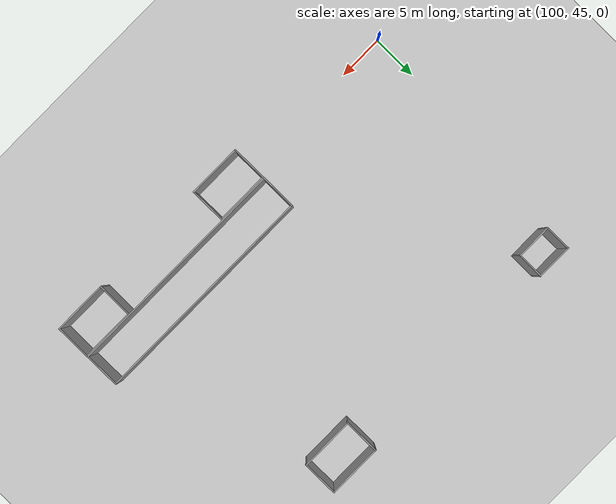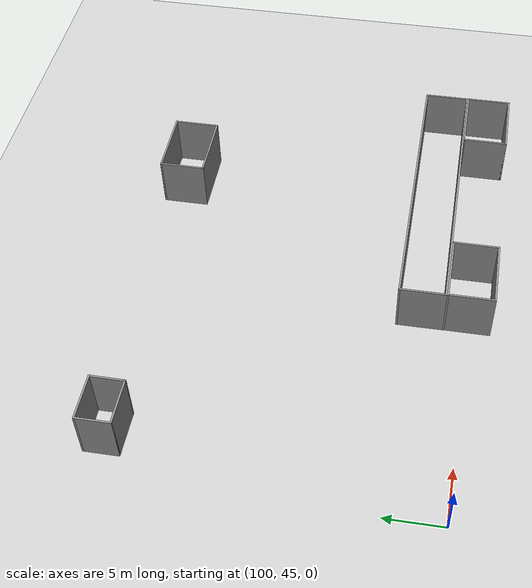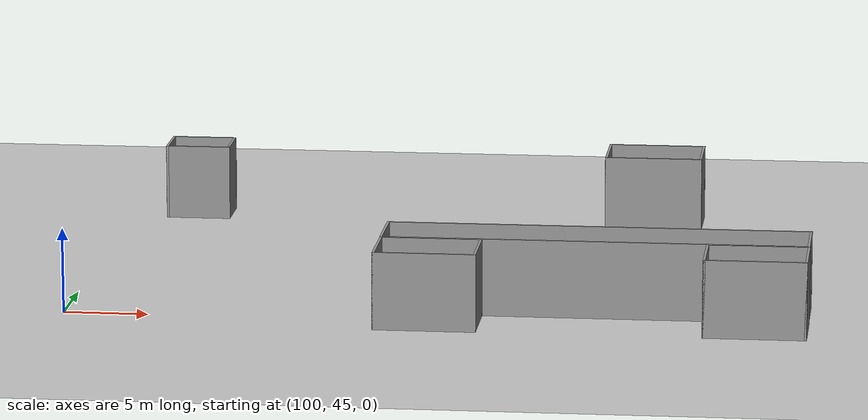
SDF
<sdf version="1.6">
 <world name="default">
  <model name="ground_plane">
   <static>1</static>
   <link name="link">
    <collision name="collision">
     <geometry><plane><normal>0 0 1</normal><size>320 320</size></plane></geometry>
     <surface>
      <contact><collide_bitmask>65535</collide_bitmask></contact>
      <friction><ode><mu>100</mu><mu2>50</mu2></ode></friction>
     </surface>
    </collision>
    <visual name="visual">
     <cast_shadows>0</cast_shadows>
     <geometry><plane><normal>0 0 1</normal><size>320 320</size></plane></geometry>
     <material>
      <script><uri>file://media/materials/scripts/gazebo.material</uri><name>Gazebo/Grey</name></script>
     </material>
    </visual>
   </link>
  </model>
  <model name="base4x25_4">
   <pose>130.82 48.9315 0 0 -0 0</pose>
   <link name="Wall_11">
    <collision name="Wall_11_Collision">
     <geometry><box><size>4 0.15 6.555</size></box></geometry>
     <pose>0 0 1.25 0 -0 0</pose>
    </collision>
    <visual name="Wall_11_Visual">
     <pose>0 0 1.25 0 -0 0</pose>
     <geometry><box><size>4 0.15 6.555</size></box></geometry>
     <material>
      <script><uri>file://media/materials/scripts/gazebo.material</uri><name>Gazebo/Grey</name></script>
      <ambient>1 1 1 1</ambient>
     </material>
     <meta><layer>0</layer></meta>
    </visual>
    <pose>-12.425 0 0 0 -0 -1.5708</pose>
   </link>
   <link name="Wall_12">
    <collision name="Wall_12_Collision">
     <geometry><box><size>25 0.15 6.555</size></box></geometry>
     <pose>0 0 1.25 0 -0 0</pose>
    </collision>
    <visual name="Wall_12_Visual">
     <pose>0 0 1.25 0 -0 0</pose>
     <geometry><box><size>25 0.15 6.555</size></box></geometry>
     <material>
      <script><uri>file://media/materials/scripts/gazebo.material</uri><name>Gazebo/Grey</name></script>
      <ambient>1 1 1 1</ambient>
     </material>
     <meta><layer>0</layer></meta>
    </visual>
    <pose>0 -1.925 0 0 -0 0</pose>
   </link>
   <link name="Wall_13">
    <collision name="Wall_13_Collision">
     <geometry><box><size>4 0.15 6.555</size></box></geometry>
     <pose>0 0 1.25 0 -0 0</pose>
    </collision>
    <visual name="Wall_13_Visual">
     <pose>0 0 1.25 0 -0 0</pose>
     <geometry><box><size>4 0.15 6.555</size></box></geometry>
     <material>
      <script><uri>file://media/materials/scripts/gazebo.material</uri><name>Gazebo/Grey</name></script>
      <ambient>1 1 1 1</ambient>
     </material>
     <meta><layer>0</layer></meta>
    </visual>
    <pose>12.425 0 0 0 -0 1.5708</pose>
   </link>
   <link name="Wall_14">
    <collision name="Wall_14_Collision">
     <geometry><box><size>25 0.15 6.555</size></box></geometry>
     <pose>0 0 1.25 0 -0 0</pose>
    </collision>
    <visual name="Wall_14_Visual">
     <pose>0 0 1.25 0 -0 0</pose>
     <geometry><box><size>25 0.15 6.555</size></box></geometry>
     <material>
      <script><uri>file://media/materials/scripts/gazebo.material</uri><name>Gazebo/Grey</name></script>
      <ambient>1 1 1 1</ambient>
     </material>
     <meta><layer>0</layer></meta>
    </visual>
    <pose>0 1.925 0 0 -0 3.14159</pose>
   </link>
   <static>1</static>
  </model>
  <model name="base4x6_13_clone_0">
   <pose>132.764 71.8878 0 0 -0 0</pose>
   <link name="Wall_23">
    <collision name="Wall_23_Collision">
     <geometry><box><size>4 0.15 6.555</size></box></geometry>
     <pose>0 0 1.25 0 -0 0</pose>
    </collision>
    <visual name="Wall_23_Visual">
     <pose>0 0 1.25 0 -0 0</pose>
     <geometry><box><size>4 0.15 6.555</size></box></geometry>
     <material>
      <script><uri>file://media/materials/scripts/gazebo.material</uri><name>Gazebo/Grey</name></script>
      <ambient>1 1 1 1</ambient>
     </material>
     <meta><layer>0</layer></meta>
    </visual>
    <pose>-2.925 0 0 0 -0 -1.5708</pose>
   </link>
   <link name="Wall_24">
    <collision name="Wall_24_Collision">
     <geometry><box><size>6 0.15 6.555</size></box></geometry>
     <pose>0 0 1.25 0 -0 0</pose>
    </collision>
    <visual name="Wall_24_Visual">
     <pose>0 0 1.25 0 -0 0</pose>
     <geometry><box><size>6 0.15 6.555</size></box></geometry>
     <material>
      <script><uri>file://media/materials/scripts/gazebo.material</uri><name>Gazebo/Grey</name></script>
      <ambient>1 1 1 1</ambient>
     </material>
     <meta><layer>0</layer></meta>
    </visual>
    <pose>-0 -1.925 0 0 -0 0</pose>
   </link>
   <link name="Wall_25">
    <collision name="Wall_25_Collision">
     <geometry><box><size>4 0.15 6.555</size></box></geometry>
     <pose>0 0 1.25 0 -0 0</pose>
    </collision>
    <visual name="Wall_25_Visual">
     <pose>0 0 1.25 0 -0 0</pose>
     <geometry><box><size>4 0.15 6.555</size></box></geometry>
     <material>
      <script><uri>file://media/materials/scripts/gazebo.material</uri><name>Gazebo/Grey</name></script>
      <ambient>1 1 1 1</ambient>
     </material>
     <meta><layer>0</layer></meta>
    </visual>
    <pose>2.925 0 0 0 -0 1.5708</pose>
   </link>
   <link name="Wall_26">
    <collision name="Wall_26_Collision">
     <geometry><box><size>6 0.15 6.555</size></box></geometry>
     <pose>0 0 1.25 0 -0 0</pose>
    </collision>
    <visual name="Wall_26_Visual">
     <pose>0 0 1.25 0 -0 0</pose>
     <geometry><box><size>6 0.15 6.555</size></box></geometry>
     <material>
      <script><uri>file://media/materials/scripts/gazebo.material</uri><name>Gazebo/Grey</name></script>
      <ambient>1 1 1 1</ambient>
     </material>
     <meta><layer>0</layer></meta>
    </visual>
    <pose>-0 1.925 0 0 -0 3.14159</pose>
   </link>
   <static>1</static>
  </model>
  <model name="base4x6_13_clone_1">
   <pose>140.347 44.9641 0 0 -0 0</pose>
   <link name="Wall_23">
    <collision name="Wall_23_Collision">
     <geometry><box><size>4 0.15 6.555</size></box></geometry>
     <pose>0 0 1.25 0 -0 0</pose>
    </collision>
    <visual name="Wall_23_Visual">
     <pose>0 0 1.25 0 -0 0</pose>
     <geometry><box><size>4 0.15 6.555</size></box></geometry>
     <material>
      <script><uri>file://media/materials/scripts/gazebo.material</uri><name>Gazebo/Grey</name></script>
      <ambient>1 1 1 1</ambient>
     </material>
     <meta><layer>0</layer></meta>
    </visual>
    <pose>-2.925 0 0 0 -0 -1.5708</pose>
   </link>
   <link name="Wall_24">
    <collision name="Wall_24_Collision">
     <geometry><box><size>6 0.15 6.555</size></box></geometry>
     <pose>0 0 1.25 0 -0 0</pose>
    </collision>
    <visual name="Wall_24_Visual">
     <pose>0 0 1.25 0 -0 0</pose>
     <geometry><box><size>6 0.15 6.555</size></box></geometry>
     <material>
      <script><uri>file://media/materials/scripts/gazebo.material</uri><name>Gazebo/Grey</name></script>
      <ambient>1 1 1 1</ambient>
     </material>
     <meta><layer>0</layer></meta>
    </visual>
    <pose>-0 -1.925 0 0 -0 0</pose>
   </link>
   <link name="Wall_25">
    <collision name="Wall_25_Collision">
     <geometry><box><size>4 0.15 6.555</size></box></geometry>
     <pose>0 0 1.25 0 -0 0</pose>
    </collision>
    <visual name="Wall_25_Visual">
     <pose>0 0 1.25 0 -0 0</pose>
     <geometry><box><size>4 0.15 6.555</size></box></geometry>
     <material>
      <script><uri>file://media/materials/scripts/gazebo.material</uri><name>Gazebo/Grey</name></script>
      <ambient>1 1 1 1</ambient>
     </material>
     <meta><layer>0</layer></meta>
    </visual>
    <pose>2.925 0 0 0 -0 1.5708</pose>
   </link>
   <link name="Wall_26">
    <collision name="Wall_26_Collision">
     <geometry><box><size>6 0.15 6.555</size></box></geometry>
     <pose>0 0 1.25 0 -0 0</pose>
    </collision>
    <visual name="Wall_26_Visual">
     <pose>0 0 1.25 0 -0 0</pose>
     <geometry><box><size>6 0.15 6.555</size></box></geometry>
     <material>
      <script><uri>file://media/materials/scripts/gazebo.material</uri><name>Gazebo/Grey</name></script>
      <ambient>1 1 1 1</ambient>
     </material>
     <meta><layer>0</layer></meta>
    </visual>
    <pose>-0 1.925 0 0 -0 3.14159</pose>
   </link>
   <static>1</static>
  </model>
  <model name="base4x6_13_clone_12">
   <pose>121.339 44.9338 0 0 -0 0</pose>
   <link name="Wall_23">
    <collision name="Wall_23_Collision">
     <geometry><box><size>4 0.15 6.555</size></box></geometry>
     <pose>0 0 1.25 0 -0 0</pose>
    </collision>
    <visual name="Wall_23_Visual">
     <pose>0 0 1.25 0 -0 0</pose>
     <geometry><box><size>4 0.15 6.555</size></box></geometry>
     <material>
      <script><uri>file://media/materials/scripts/gazebo.material</uri><name>Gazebo/Grey</name></script>
      <ambient>1 1 1 1</ambient>
     </material>
     <meta><layer>0</layer></meta>
    </visual>
    <pose>-2.925 0 0 0 -0 -1.5708</pose>
   </link>
   <link name="Wall_24">
    <collision name="Wall_24_Collision">
     <geometry><box><size>6 0.15 6.555</size></box></geometry>
     <pose>0 0 1.25 0 -0 0</pose>
    </collision>
    <visual name="Wall_24_Visual">
     <pose>0 0 1.25 0 -0 0</pose>
     <geometry><box><size>6 0.15 6.555</size></box></geometry>
     <material>
      <script><uri>file://media/materials/scripts/gazebo.material</uri><name>Gazebo/Grey</name></script>
      <ambient>1 1 1 1</ambient>
     </material>
     <meta><layer>0</layer></meta>
    </visual>
    <pose>-0 -1.925 0 0 -0 0</pose>
   </link>
   <link name="Wall_25">
    <collision name="Wall_25_Collision">
     <geometry><box><size>4 0.15 6.555</size></box></geometry>
     <pose>0 0 1.25 0 -0 0</pose>
    </collision>
    <visual name="Wall_25_Visual">
     <pose>0 0 1.25 0 -0 0</pose>
     <geometry><box><size>4 0.15 6.555</size></box></geometry>
     <material>
      <script><uri>file://media/materials/scripts/gazebo.material</uri><name>Gazebo/Grey</name></script>
      <ambient>1 1 1 1</ambient>
     </material>
     <meta><layer>0</layer></meta>
    </visual>
    <pose>2.925 0 0 0 -0 1.5708</pose>
   </link>
   <link name="Wall_26">
    <collision name="Wall_26_Collision">
     <geometry><box><size>6 0.15 6.555</size></box></geometry>
     <pose>0 0 1.25 0 -0 0</pose>
    </collision>
    <visual name="Wall_26_Visual">
     <pose>0 0 1.25 0 -0 0</pose>
     <geometry><box><size>6 0.15 6.555</size></box></geometry>
     <material>
      <script><uri>file://media/materials/scripts/gazebo.material</uri><name>Gazebo/Grey</name></script>
      <ambient>1 1 1 1</ambient>
     </material>
     <meta><layer>0</layer></meta>
    </visual>
    <pose>-0 1.925 0 0 -0 3.14159</pose>
   </link>
   <static>1</static>
  </model>
  <model name="base3x4_3_clone_1">
   <pose>104.098 71.8947 0 0 -0 0</pose>
   <link name="Wall_18">
    <collision name="Wall_18_Collision">
     <geometry><box><size>3 0.15 6.555</size></box></geometry>
     <pose>0 0 1.25 0 -0 0</pose>
    </collision>
    <visual name="Wall_18_Visual">
     <pose>0 0 1.25 0 -0 0</pose>
     <geometry><box><size>3 0.15 6.555</size></box></geometry>
     <material>
      <script><uri>file://media/materials/scripts/gazebo.material</uri><name>Gazebo/Grey</name></script>
      <ambient>1 1 1 1</ambient>
     </material>
     <meta><layer>0</layer></meta>
    </visual>
    <pose>-1.925 -0 0 0 -0 -1.5708</pose>
   </link>
   <link name="Wall_19">
    <collision name="Wall_19_Collision">
     <geometry><box><size>4 0.15 6.555</size></box></geometry>
     <pose>0 0 1.25 0 -0 0</pose>
    </collision>
    <visual name="Wall_19_Visual">
     <pose>0 0 1.25 0 -0 0</pose>
     <geometry><box><size>4 0.15 6.555</size></box></geometry>
     <material>
      <script><uri>file://media/materials/scripts/gazebo.material</uri><name>Gazebo/Grey</name></script>
      <ambient>1 1 1 1</ambient>
     </material>
     <meta><layer>0</layer></meta>
    </visual>
    <pose>-0 -1.425 0 0 -0 0</pose>
   </link>
   <link name="Wall_20">
    <collision name="Wall_20_Collision">
     <geometry><box><size>3 0.15 6.555</size></box></geometry>
     <pose>0 0 1.25 0 -0 0</pose>
    </collision>
    <visual name="Wall_20_Visual">
     <pose>0 0 1.25 0 -0 0</pose>
     <geometry><box><size>3 0.15 6.555</size></box></geometry>
     <material>
      <script><uri>file://media/materials/scripts/gazebo.material</uri><name>Gazebo/Grey</name></script>
      <ambient>1 1 1 1</ambient>
     </material>
     <meta><layer>0</layer></meta>
    </visual>
    <pose>1.925 -0 0 0 -0 1.5708</pose>
   </link>
   <link name="Wall_21">
    <collision name="Wall_21_Collision">
     <geometry><box><size>4 0.15 6.555</size></box></geometry>
     <pose>0 0 1.25 0 -0 0</pose>
    </collision>
    <visual name="Wall_21_Visual">
     <pose>0 0 1.25 0 -0 0</pose>
     <geometry><box><size>4 0.15 6.555</size></box></geometry>
     <material>
      <script><uri>file://media/materials/scripts/gazebo.material</uri><name>Gazebo/Grey</name></script>
      <ambient>1 1 1 1</ambient>
     </material>
     <meta><layer>0</layer></meta>
    </visual>
    <pose>-0 1.425 0 0 -0 3.14159</pose>
   </link>
   <static>1</static>
  </model>
 </world>
</sdf>
